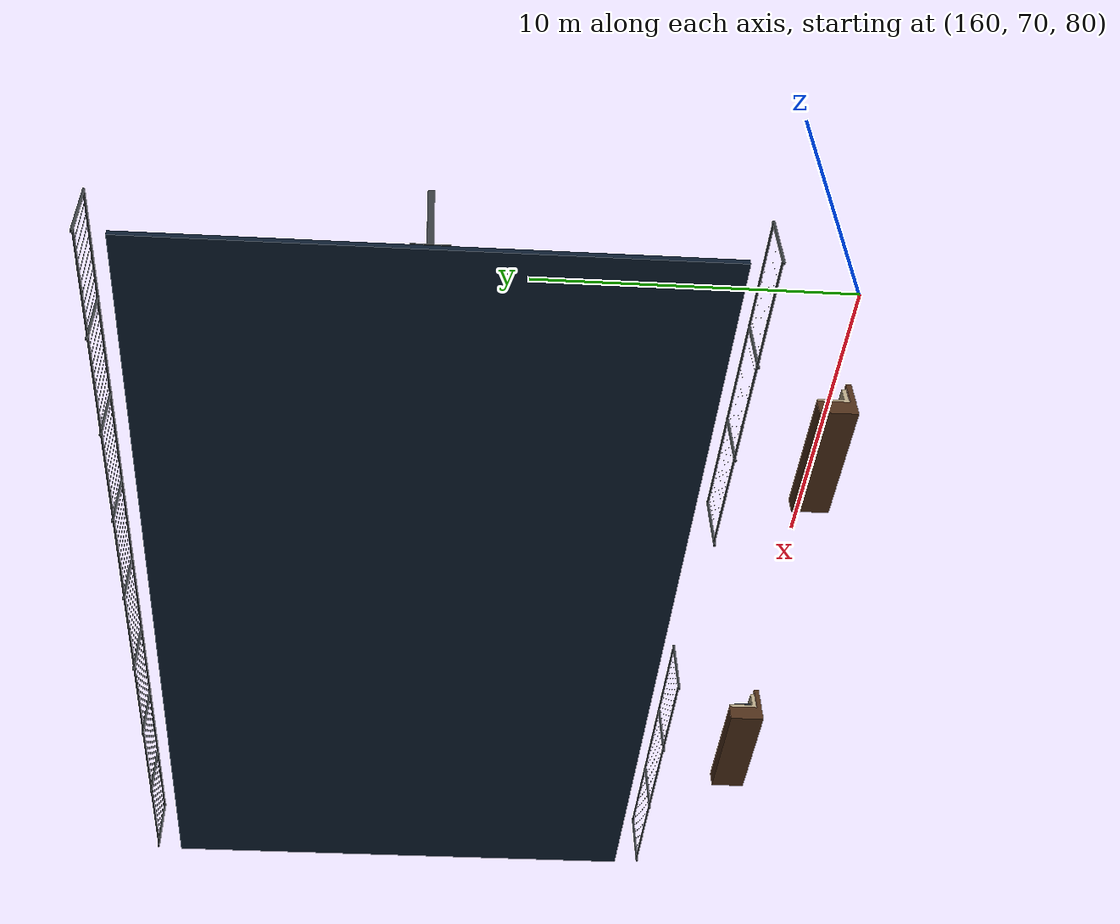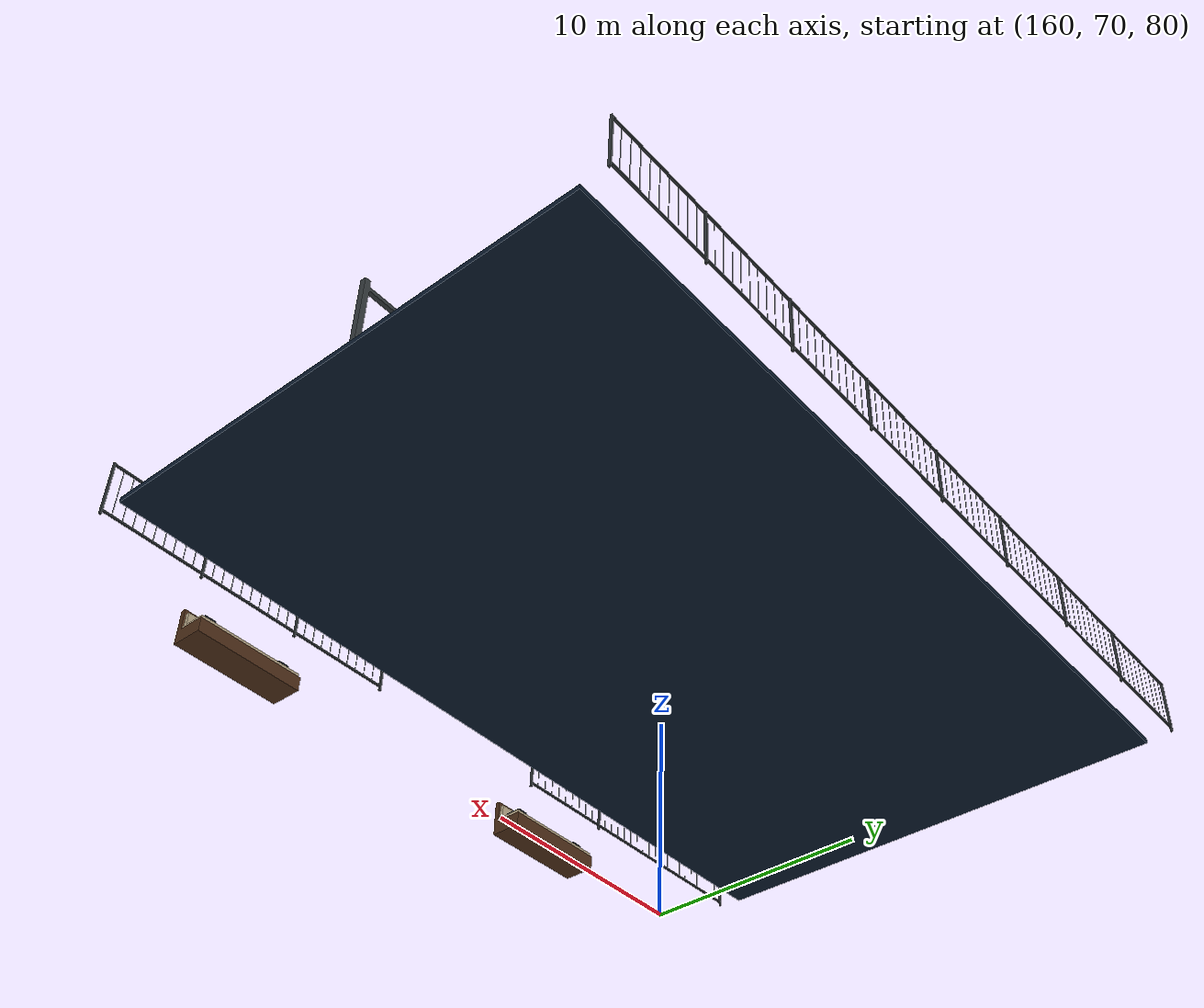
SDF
<?xml version='1.0' encoding='utf-8'?>
<sdf version="1.9">
  <model name="estate_basketball">
    <static>true</static>
    <link name="structure">
      <visual name="visual_court">
        <geometry>
          <mesh>
            <uri>model://estate_basketball/meshes/visual/court.dae</uri>
          </mesh>
        </geometry>
        <material>
          <ambient>0.045 0.105 0.18 1</ambient>
          <diffuse>0.045 0.105 0.18 1</diffuse>
          <specular>0.15 0.15 0.15 1</specular>
          <pbr>
            <metal>
              <roughness>0.8</roughness>
              <metalness>0.0</metalness>
            </metal>
          </pbr>
        </material>
      </visual>
      <visual name="visual_rubber">
        <geometry>
          <mesh>
            <uri>model://estate_basketball/meshes/visual/rubber.dae</uri>
          </mesh>
        </geometry>
        <material>
          <ambient>0.035 0.042 0.045 1</ambient>
          <diffuse>0.035 0.042 0.045 1</diffuse>
          <specular>0.15 0.15 0.15 1</specular>
          <pbr>
            <metal>
              <roughness>0.8</roughness>
              <metalness>0.0</metalness>
            </metal>
          </pbr>
        </material>
      </visual>
      <visual name="visual_metal">
        <geometry>
          <mesh>
            <uri>model://estate_basketball/meshes/visual/metal.dae</uri>
          </mesh>
        </geometry>
        <material>
          <ambient>0.21 0.23 0.24 1</ambient>
          <diffuse>0.21 0.23 0.24 1</diffuse>
          <specular>0.15 0.15 0.15 1</specular>
          <pbr>
            <metal>
              <roughness>0.35</roughness>
              <metalness>0.65</metalness>
            </metal>
          </pbr>
        </material>
      </visual>
      <visual name="visual_glass">
        <geometry>
          <mesh>
            <uri>model://estate_basketball/meshes/visual/glass.dae</uri>
          </mesh>
        </geometry>
        <material>
          <ambient>0.36 0.58 0.63 1</ambient>
          <diffuse>0.36 0.58 0.63 1</diffuse>
          <specular>0.15 0.15 0.15 1</specular>
          <pbr>
            <metal>
              <roughness>0.16</roughness>
              <metalness>0.0</metalness>
            </metal>
          </pbr>
        </material>
        <transparency>0.78</transparency>
        <cast_shadows>false</cast_shadows>
      </visual>
      <visual name="visual_brass">
        <geometry>
          <mesh>
            <uri>model://estate_basketball/meshes/visual/brass.dae</uri>
          </mesh>
        </geometry>
        <material>
          <ambient>0.68 0.48 0.22 1</ambient>
          <diffuse>0.68 0.48 0.22 1</diffuse>
          <specular>0.15 0.15 0.15 1</specular>
          <pbr>
            <metal>
              <roughness>0.35</roughness>
              <metalness>0.65</metalness>
            </metal>
          </pbr>
        </material>
      </visual>
      <visual name="visual_wood">
        <geometry>
          <mesh>
            <uri>model://estate_basketball/meshes/visual/wood.dae</uri>
          </mesh>
        </geometry>
        <material>
          <ambient>0.3 0.18 0.095 1</ambient>
          <diffuse>0.3 0.18 0.095 1</diffuse>
          <specular>0.15 0.15 0.15 1</specular>
          <pbr>
            <metal>
              <roughness>0.8</roughness>
              <metalness>0.0</metalness>
            </metal>
          </pbr>
        </material>
      </visual>
      <visual name="visual_court_key">
        <geometry>
          <mesh>
            <uri>model://estate_basketball/meshes/visual/court_key.dae</uri>
          </mesh>
        </geometry>
        <material>
          <ambient>0.12 0.22 0.31 1</ambient>
          <diffuse>0.12 0.22 0.31 1</diffuse>
          <specular>0.15 0.15 0.15 1</specular>
          <pbr>
            <metal>
              <roughness>0.8</roughness>
              <metalness>0.0</metalness>
            </metal>
          </pbr>
        </material>
      </visual>
      <visual name="visual_dark_fabric">
        <geometry>
          <mesh>
            <uri>model://estate_basketball/meshes/visual/dark_fabric.dae</uri>
          </mesh>
        </geometry>
        <material>
          <ambient>0.095 0.12 0.14 1</ambient>
          <diffuse>0.095 0.12 0.14 1</diffuse>
          <specular>0.15 0.15 0.15 1</specular>
          <pbr>
            <metal>
              <roughness>0.8</roughness>
              <metalness>0.0</metalness>
            </metal>
          </pbr>
        </material>
      </visual>
      <visual name="visual_fabric">
        <geometry>
          <mesh>
            <uri>model://estate_basketball/meshes/visual/fabric.dae</uri>
          </mesh>
        </geometry>
        <material>
          <ambient>0.7 0.64 0.52 1</ambient>
          <diffuse>0.7 0.64 0.52 1</diffuse>
          <specular>0.15 0.15 0.15 1</specular>
          <pbr>
            <metal>
              <roughness>0.8</roughness>
              <metalness>0.0</metalness>
            </metal>
          </pbr>
        </material>
      </visual>
      <visual name="visual_white">
        <geometry>
          <mesh>
            <uri>model://estate_basketball/meshes/visual/white.dae</uri>
          </mesh>
        </geometry>
        <material>
          <ambient>0.93 0.93 0.89 1</ambient>
          <diffuse>0.93 0.93 0.89 1</diffuse>
          <specular>0.15 0.15 0.15 1</specular>
          <pbr>
            <metal>
              <roughness>0.8</roughness>
              <metalness>0.0</metalness>
            </metal>
          </pbr>
        </material>
      </visual>
      <collision name="court_surface">
        <geometry>
          <box>
            <size>32 19 0.2</size>
          </box>
        </geometry>
        <pose>175 83 80.02 0 0 0</pose>
      </collision>
      <collision name="west_hoop_base">
        <geometry>
          <box>
            <size>1 1.25 0.5</size>
          </box>
        </geometry>
        <pose>159.8 83 80.37 0 0 0</pose>
      </collision>
      <collision name="west_hoop_post">
        <geometry>
          <box>
            <size>0.22 0.22 4</size>
          </box>
        </geometry>
        <pose>159.8 83 82.12 0 0 0</pose>
      </collision>
      <collision name="west_hoop_arm">
        <geometry>
          <box>
            <size>0.16 0.16 2.4</size>
          </box>
        </geometry>
        <pose>161 83 83.82 0 1.5708 0</pose>
      </collision>
      <collision name="west_backboard">
        <geometry>
          <box>
            <size>0.08 1.8 1.05</size>
          </box>
        </geometry>
        <pose>162.2 83 83.62 0 0 0</pose>
      </collision>
      <collision name="west_rim">
        <geometry>
          <mesh>
            <uri>model://estate_basketball/meshes/collision/west_rim.dae</uri>
          </mesh>
        </geometry>
      </collision>
      <collision name="east_hoop_base">
        <geometry>
          <box>
            <size>1 1.25 0.5</size>
          </box>
        </geometry>
        <pose>190.2 83 80.37 0 0 0</pose>
      </collision>
      <collision name="east_hoop_post">
        <geometry>
          <box>
            <size>0.22 0.22 4</size>
          </box>
        </geometry>
        <pose>190.2 83 82.12 0 0 0</pose>
      </collision>
      <collision name="east_hoop_arm">
        <geometry>
          <box>
            <size>0.16 0.16 2.4</size>
          </box>
        </geometry>
        <pose>189 83 83.82 0 1.5708 3.14159</pose>
      </collision>
      <collision name="east_backboard">
        <geometry>
          <box>
            <size>0.08 1.8 1.05</size>
          </box>
        </geometry>
        <pose>187.8 83 83.62 0 0 0</pose>
      </collision>
      <collision name="east_rim">
        <geometry>
          <mesh>
            <uri>model://estate_basketball/meshes/collision/east_rim.dae</uri>
          </mesh>
        </geometry>
      </collision>
      <collision name="court_fence_post_-1_0">
        <geometry>
          <box>
            <size>0.08 0.08 2.2</size>
          </box>
        </geometry>
        <pose>159 72.5 81.1 0 0 0</pose>
      </collision>
      <collision name="court_fence_post_-1_1">
        <geometry>
          <box>
            <size>0.08 0.08 2.2</size>
          </box>
        </geometry>
        <pose>163 72.5 81.1 0 0 0</pose>
      </collision>
      <collision name="court_fence_post_-1_2">
        <geometry>
          <box>
            <size>0.08 0.08 2.2</size>
          </box>
        </geometry>
        <pose>167 72.5 81.1 0 0 0</pose>
      </collision>
      <collision name="court_fence_post_-1_3">
        <geometry>
          <box>
            <size>0.08 0.08 2.2</size>
          </box>
        </geometry>
        <pose>171 72.5 81.1 0 0 0</pose>
      </collision>
      <collision name="court_fence_post_-1_5">
        <geometry>
          <box>
            <size>0.08 0.08 2.2</size>
          </box>
        </geometry>
        <pose>179 72.5 81.1 0 0 0</pose>
      </collision>
      <collision name="court_fence_post_-1_6">
        <geometry>
          <box>
            <size>0.08 0.08 2.2</size>
          </box>
        </geometry>
        <pose>183 72.5 81.1 0 0 0</pose>
      </collision>
      <collision name="court_fence_post_-1_7">
        <geometry>
          <box>
            <size>0.08 0.08 2.2</size>
          </box>
        </geometry>
        <pose>187 72.5 81.1 0 0 0</pose>
      </collision>
      <collision name="court_fence_post_-1_8">
        <geometry>
          <box>
            <size>0.08 0.08 2.2</size>
          </box>
        </geometry>
        <pose>191 72.5 81.1 0 0 0</pose>
      </collision>
      <collision name="court_fence_rail_-1_0.18_-1">
        <geometry>
          <box>
            <size>12 0.065 0.065</size>
          </box>
        </geometry>
        <pose>165 72.5 80.18 0 0 0</pose>
      </collision>
      <collision name="court_fence_rail_-1_0.18_1">
        <geometry>
          <box>
            <size>12 0.065 0.065</size>
          </box>
        </geometry>
        <pose>185 72.5 80.18 0 0 0</pose>
      </collision>
      <collision name="court_fence_rail_-1_2.15_-1">
        <geometry>
          <box>
            <size>12 0.065 0.065</size>
          </box>
        </geometry>
        <pose>165 72.5 82.15 0 0 0</pose>
      </collision>
      <collision name="court_fence_rail_-1_2.15_1">
        <geometry>
          <box>
            <size>12 0.065 0.065</size>
          </box>
        </geometry>
        <pose>185 72.5 82.15 0 0 0</pose>
      </collision>
      <collision name="court_fence_post_1_0">
        <geometry>
          <box>
            <size>0.08 0.08 2.2</size>
          </box>
        </geometry>
        <pose>159 93.5 81.1 0 0 0</pose>
      </collision>
      <collision name="court_fence_post_1_1">
        <geometry>
          <box>
            <size>0.08 0.08 2.2</size>
          </box>
        </geometry>
        <pose>163 93.5 81.1 0 0 0</pose>
      </collision>
      <collision name="court_fence_post_1_2">
        <geometry>
          <box>
            <size>0.08 0.08 2.2</size>
          </box>
        </geometry>
        <pose>167 93.5 81.1 0 0 0</pose>
      </collision>
      <collision name="court_fence_post_1_3">
        <geometry>
          <box>
            <size>0.08 0.08 2.2</size>
          </box>
        </geometry>
        <pose>171 93.5 81.1 0 0 0</pose>
      </collision>
      <collision name="court_fence_post_1_4">
        <geometry>
          <box>
            <size>0.08 0.08 2.2</size>
          </box>
        </geometry>
        <pose>175 93.5 81.1 0 0 0</pose>
      </collision>
      <collision name="court_fence_post_1_5">
        <geometry>
          <box>
            <size>0.08 0.08 2.2</size>
          </box>
        </geometry>
        <pose>179 93.5 81.1 0 0 0</pose>
      </collision>
      <collision name="court_fence_post_1_6">
        <geometry>
          <box>
            <size>0.08 0.08 2.2</size>
          </box>
        </geometry>
        <pose>183 93.5 81.1 0 0 0</pose>
      </collision>
      <collision name="court_fence_post_1_7">
        <geometry>
          <box>
            <size>0.08 0.08 2.2</size>
          </box>
        </geometry>
        <pose>187 93.5 81.1 0 0 0</pose>
      </collision>
      <collision name="court_fence_post_1_8">
        <geometry>
          <box>
            <size>0.08 0.08 2.2</size>
          </box>
        </geometry>
        <pose>191 93.5 81.1 0 0 0</pose>
      </collision>
      <collision name="court_fence_rail_1_0.18">
        <geometry>
          <box>
            <size>32 0.065 0.065</size>
          </box>
        </geometry>
        <pose>175 93.5 80.18 0 0 0</pose>
      </collision>
      <collision name="court_fence_rail_1_2.15">
        <geometry>
          <box>
            <size>32 0.065 0.065</size>
          </box>
        </geometry>
        <pose>175 93.5 82.15 0 0 0</pose>
      </collision>
      <collision name="court_bench_-1_base">
        <geometry>
          <box>
            <size>4.5 1.3 0.58</size>
          </box>
        </geometry>
        <pose>167 69.5 80.35 0 0 3.14159</pose>
      </collision>
      <collision name="court_bench_-1_back">
        <geometry>
          <box>
            <size>4.5 0.19 1</size>
          </box>
        </geometry>
        <pose>167 68.94 81.04 0 0 3.14159</pose>
      </collision>
      <collision name="court_bench_1_base">
        <geometry>
          <box>
            <size>4.5 1.3 0.58</size>
          </box>
        </geometry>
        <pose>183 69.5 80.35 0 0 3.14159</pose>
      </collision>
      <collision name="court_bench_1_back">
        <geometry>
          <box>
            <size>4.5 0.19 1</size>
          </box>
        </geometry>
        <pose>183 68.94 81.04 0 0 3.14159</pose>
      </collision>
    </link>
  </model>
</sdf>
